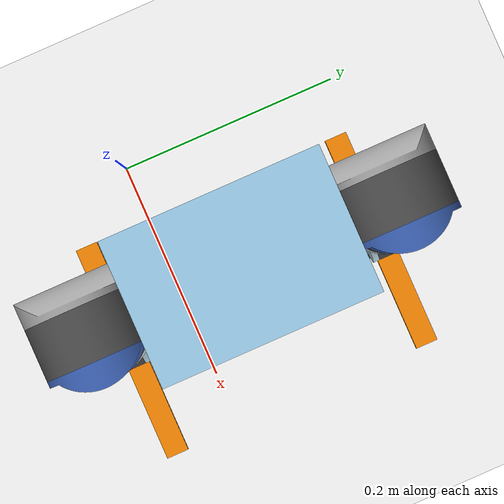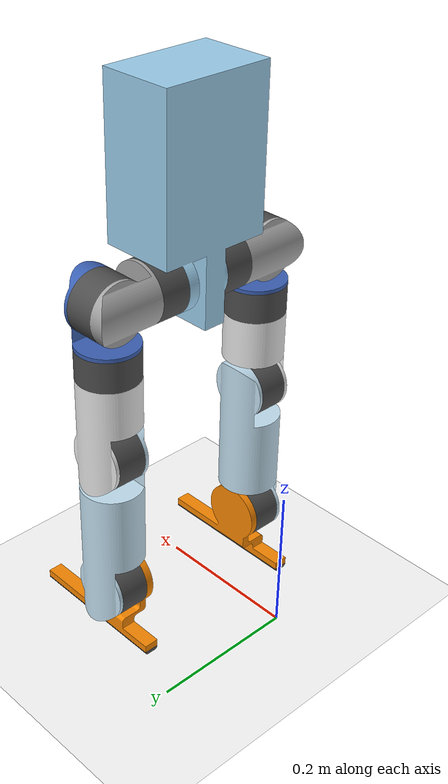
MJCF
<mujoco model="scene">
    <include file="humanoid_mockup.xml"/>

    <visual>
        <headlight diffuse="0.6 0.6 0.6" ambient="0.3 0.3 0.3" specular="0 0 0"/>
        <rgba haze="0.15 0.25 0.35 1"/>
        <global azimuth="160" elevation="-20"/>
    </visual>

    <asset>
        <texture type="skybox" builtin="gradient" rgb1="1 1 1" rgb2="1 1 1" width="800" height="800"/>
        <texture type="2d" name="groundplane" builtin="checker" mark="edge" rgb1="1 1 1" rgb2="1 1 1" markrgb="0 0 0"
            width="300" height="300"/>
        <material name="groundplane" texture="groundplane" texuniform="true" texrepeat="5 5" reflectance="0"/>
    </asset>

    <worldbody>
        <body name="floor">
            <geom name="floor" size="0 0 0.01" type="plane" material="groundplane" contype="1" conaffinity="0"
                priority="1" friction="0.6" condim="3"/>
        </body>
    </worldbody>

    <keyframe>
        <key name="home"
            qpos="
                0 0 0.5
                1 0 0 0

                -0.39095 -0.01061 -0.00438 -0.88998 0.49905
                -0.39095 -0.01061 -0.00438 -0.88998 0.49905
                "
            ctrl="
                -0.39095 -0.01061 -0.00438 -0.88998 0.49905
                -0.39095 -0.01061 -0.00438 -0.88998 0.49905
        "/>
    </keyframe>
</mujoco>

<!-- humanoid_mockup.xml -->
<!-- Generated using onshape-to-robot -->
<!-- Onshape https://cad.onshape.com/documents/a9a7e86a17f28ee4ee62053e/w/e5c2325ac4afc9cec5a29721/e/8ca5f896267b7130065f5bbb -->
<mujoco model="humanoid_mockup_v0.1">
  <option iterations="1" ls_iterations="5">
    <flag eulerdamp="disable"/>
  </option>
  <compiler angle="radian" meshdir="assets"/>
  <default>
    <default class="humanoid_mockup_v0.1">
      <joint frictionloss="0.1" armature="0.005"/>
      <position kp="50" dampratio="1"/>
      <default class="visual">
        <geom type="mesh" contype="0" conaffinity="0" group="2"/>
      </default>
      <default class="collision">
        <geom group="3"/>
      </default>
    </default>
  </default>
  <!-- Additional steadywin_GIM6010-8.xml -->
  <default>
    <default class="steadywin_GIM6010_8">
      <!-- need to be identified -->
      <geom contype="0" conaffinity="0"/>
      <joint damping="0.1" frictionloss="0.5" armature="0.002"/>
      <position kp="50.0" kv="0.0" forcerange="-11.0 11.0"/>
    </default>
  </default>
  <!-- Additional sensors.xml -->
  <sensor>
    <gyro site="imu" name="gyro"/>
    <velocimeter site="imu" name="local_linvel"/>
    <accelerometer site="imu" name="accelerometer"/>
    <framezaxis objtype="site" objname="imu" name="upvector"/>
    <framexaxis objtype="site" objname="imu" name="forwardvector"/>
    <framelinvel objtype="site" objname="imu" name="global_linvel"/>
    <frameangvel objtype="site" objname="imu" name="global_angvel"/>
    <framepos objtype="site" objname="imu" name="position"/>
    <framequat objtype="site" objname="imu" name="orientation"/>
    <framelinvel objtype="site" objname="right_foot" name="right_foot_global_linvel"/>
    <framelinvel objtype="site" objname="left_foot" name="left_foot_global_linvel"/>
    <framexaxis objtype="site" objname="left_foot" name="left_foot_upvector"/>
    <framexaxis objtype="site" objname="right_foot" name="right_foot_upvector"/>
    <framepos objtype="site" objname="left_foot" name="left_foot_pos"/>
    <framepos objtype="site" objname="right_foot" name="right_foot_pos"/>
  </sensor>
  <worldbody>
    <!-- Link trunk_2 -->
    <body name="trunk_2" pos="0 0 0.55" quat="1 0 0 0" childclass="humanoid_mockup_v0.1">
      <freejoint name="trunk_2_freejoint"/>
      <inertial pos="0.120022 0.0611056 0.0576308" mass="5.776" fullinertia="0.0497042 0.0436902 0.0147819 5.50334e-11 -1.13903e-18 -4.30554e-10"/>
      <!-- Part gim6010_8 -->
      <geom type="mesh" class="visual" pos="0.120022 0.0911056 -0.0540277" quat="0.707107 -0.707107 -3.23536e-09 3.23536e-09" mesh="gim6010_8" material="gim6010_8_material"/>
      <!-- Part trunk_2 -->
      <geom type="mesh" class="visual" pos="0.120022 0.0611056 -0.0540277" quat="1 -7.44689e-09 -0 4.57549e-09" mesh="trunk" material="trunk_material"/>
      <!-- Part gim6010_8_2 -->
      <geom type="mesh" class="visual" pos="0.120022 -0.00889443 -0.0540277" quat="0.707107 -0.707107 -3.23536e-09 3.23536e-09" mesh="gim6010_8" material="gim6010_8_material"/>
      <!-- Frame trunk -->
      <site group="3" name="trunk" pos="0.120022 0.0611056 0.0459723" quat="1 -7.44689e-09 -0 4.57549e-09"/>
      <!-- Frame imu -->
      <site group="3" name="imu" pos="0.120022 0.0611056 0.195972" quat="1 -7.44689e-09 -0 4.57549e-09"/>
      <!-- Link left_hip_pitch_to_roll -->
      <body name="left_hip_pitch_to_roll" pos="0.120022 0.131106 -0.0540277" quat="0.707107 -0.707107 5.37049e-09 1.18412e-08">
        <!-- Joint from trunk_2 to left_hip_pitch_to_roll -->
        <joint axis="0 0 1" name="left_hip_pitch" type="hinge" range="-1.5707963511359102 1.570796302453883" class="steadywin_GIM6010_8"/>
        <inertial pos="-0.00539992 -2.00931e-10 0.046622" mass="0.517883" fullinertia="0.000465444 0.000403205 0.000324921 -3.16452e-12 1.58161e-06 1.79213e-12"/>
        <!-- Part left_hip_pitch_to_roll -->
        <geom type="mesh" class="visual" pos="0 6.93889e-18 -0.07" quat="0.707107 0.707107 0 -3.63926e-25" mesh="left_hip_pitch_to_roll" material="left_hip_pitch_to_roll_material"/>
        <!-- Part gim6010_8_3 -->
        <geom type="mesh" class="visual" pos="0.02 0 0.05" quat="0.5 0.5 -0.5 -0.5" mesh="gim6010_8" material="gim6010_8_material"/>
        <!-- Link left_hip_roll_to_yaw -->
        <body name="left_hip_roll_to_yaw" pos="0.02 6.93889e-18 0.05" quat="1.44385e-16 -0.707107 1.11022e-16 -0.707107">
          <!-- Joint from left_hip_pitch_to_roll to left_hip_roll_to_yaw -->
          <joint axis="0 0 1" name="left_hip_roll" type="hinge" range="-0.3490658503988659 1.5707963267948966" class="steadywin_GIM6010_8"/>
          <inertial pos="2.00931e-10 -0.0558222 -0.0146001" mass="0.517883" fullinertia="0.000696527 0.000428388 0.0006553 -7.24941e-12 -3.16452e-12 -0.000148243"/>
          <!-- Part left_hip_roll_to_yaw -->
          <geom type="mesh" class="visual" pos="-0.12 0 -0.02" quat="0.5 -0.5 -0.5 -0.5" mesh="left_hip_roll_to_yaw" material="left_hip_roll_to_yaw_material"/>
          <!-- Part gim6010_8_4 -->
          <geom type="mesh" class="visual" pos="2.77556e-17 -0.09 -0.02" quat="0.5 -0.5 -0.5 -0.5" mesh="gim6010_8" material="gim6010_8_material"/>
          <!-- Link left_hip_yaw_to_knee -->
          <body name="left_hip_yaw_to_knee" pos="2.77556e-17 -0.09 -0.02" quat="0.5 0.5 -0.5 0.5">
            <!-- Joint from left_hip_roll_to_yaw to left_hip_yaw_to_knee -->
            <joint axis="0 0 1" name="left_hip_yaw" type="hinge" range="-1.570796331370385 1.5707963222194081" class="steadywin_GIM6010_8"/>
            <inertial pos="6.01852e-10 -0.00240575 0.0825501" mass="0.688" fullinertia="0.00139735 0.00147146 0.000460223 1.06662e-11 -1.67017e-11 4.0779e-05"/>
            <!-- Part left_hip_yaw_to_knee -->
            <geom type="mesh" class="visual" pos="1.38778e-17 0.12 -0.09" quat="0 1 0 0" mesh="left_hip_yaw_to_knee" material="left_hip_yaw_to_knee_material"/>
            <!-- Part gim6010_8_5 -->
            <geom type="mesh" class="visual" pos="1.38778e-17 0.02 0.11" quat="0.707107 0.707107 -0 -1.48992e-17" mesh="gim6010_8" material="gim6010_8_material"/>
            <!-- Link left_knee_to_ankle_pitch -->
            <body name="left_knee_to_ankle_pitch" pos="1.38778e-17 0.02 0.11" quat="0.707107 -0.707107 -1.92504e-10 -1.92504e-10">
              <!-- Joint from left_hip_yaw_to_knee to left_knee_to_ankle_pitch -->
              <joint axis="0 0 1" name="left_knee" type="hinge" range="-2.268928027048144 5.444842610619447e-10" class="steadywin_GIM6010_8"/>
              <inertial pos="-4.82013e-08 -0.149239 -0.0200003" mass="0.788" fullinertia="0.00357604 0.000553221 0.00362879 1.87021e-09 2.32028e-09 -0.000244816"/>
              <!-- Part left_knee_to_ankle_pitch -->
              <geom type="mesh" class="visual" pos="-1.38778e-17 0.2 0.1" quat="0.707107 -0.707107 -0 7.25026e-25" mesh="left_knee_to_ankle_pitch" material="left_knee_to_ankle_pitch_material"/>
              <!-- Part gim6010_8_6 -->
              <geom type="mesh" class="visual" pos="-2.77556e-17 -0.2 0" quat="0 1 0 0" mesh="gim6010_8" material="gim6010_8_material"/>
              <!-- Link left_foot_2 -->
              <body name="left_foot_2" pos="-2.77556e-17 -0.2 2.77556e-17" quat="1 0 -1.11022e-16 3.46945e-17">
                <!-- Joint from left_knee_to_ankle_pitch to left_foot_2 -->
                <joint axis="0 0 1" name="left_ankle_pitch" type="hinge" range="-1.5707963267948966 1.5707963267948966" class="steadywin_GIM6010_8"/>
                <inertial pos="0.0202559 -0.0527376 -0.0136201" mass="0.4" fullinertia="0.000426448 0.00107974 0.00139386 0.000143357 5.16919e-05 -0.000119141"/>
                <!-- Part left_foot_sole -->
                <geom type="mesh" class="visual" pos="0 0.4 0.1" quat="0.707107 -0.707107 -0 3.77957e-24" mesh="left_foot_sole" material="left_foot_sole_material"/>
                <geom type="mesh" class="collision" pos="0 0.4 0.1" quat="0.707107 -0.707107 -0 3.77957e-24" mesh="left_foot_sole" material="left_foot_sole_material" name="left_foot_contact"/>
                <!-- Part left_foot_2 -->
                <geom type="mesh" class="visual" pos="-1.38778e-17 0.4 0.1" quat="0.707107 -0.707107 -0 -5.6708e-26" mesh="left_foot" material="left_foot_material"/>
                <!-- Frame left_foot -->
                <site group="3" name="left_foot" pos="0.03 -0.075 -0.02" quat="0.707107 -0.707107 -0 3.77957e-24"/>
              </body>
            </body>
          </body>
        </body>
      </body>
      <!-- Link right_hip_pitch_to_roll -->
      <body name="right_hip_pitch_to_roll" pos="0.120022 -0.00889443 -0.0540277" quat="0.707107 -0.707107 -3.23536e-09 3.23536e-09">
        <!-- Joint from trunk_2 to right_hip_pitch_to_roll -->
        <joint axis="0 0 1" name="right_hip_pitch" type="hinge" range="-1.5707963267948966 1.5707963267948966" class="steadywin_GIM6010_8"/>
        <inertial pos="-0.00539992 2.00931e-10 -0.046622" mass="0.517883" fullinertia="0.000465444 0.000403205 0.000324921 3.16452e-12 -1.58161e-06 1.79213e-12"/>
        <!-- Part gim6010_8_7 -->
        <geom type="mesh" class="visual" pos="-0.02 0 -0.05" quat="0.707107 -0 0.707107 -3.33067e-16" mesh="gim6010_8" material="gim6010_8_material"/>
        <!-- Part right_hip_pitch_to_roll -->
        <geom type="mesh" class="visual" pos="-2.77556e-17 0 0.07" quat="0.707107 0.707107 -0 -2.88869e-25" mesh="right_hip_pitch_to_roll" material="right_hip_pitch_to_roll_material"/>
        <!-- Link right_hip_roll_to_yaw -->
        <body name="right_hip_roll_to_yaw" pos="0.02 -6.93889e-18 -0.05" quat="0.707107 5.26575e-09 -0.707107 -5.26575e-09">
          <!-- Joint from right_hip_pitch_to_roll to right_hip_roll_to_yaw -->
          <joint axis="0 0 1" name="right_hip_roll" type="hinge" range="-0.3490658355050899 1.5707963416886725" class="steadywin_GIM6010_8"/>
          <inertial pos="2.00931e-10 0.0558222 0.0146001" mass="0.517883" fullinertia="0.000696527 0.000428388 0.0006553 7.24941e-12 3.16452e-12 -0.000148243"/>
          <!-- Part right_hip_roll_to_yaw -->
          <geom type="mesh" class="visual" pos="0.12 0 0.02" quat="0.5 0.5 0.5 -0.5" mesh="right_hip_roll_to_yaw" material="right_hip_roll_to_yaw_material"/>
          <!-- Part gim6010_8_8 -->
          <geom type="mesh" class="visual" pos="-2.08167e-17 0.05 0.02" quat="0.5 -0.5 0.5 0.5" mesh="gim6010_8" material="gim6010_8_material"/>
          <!-- Link right_hip_yaw_to_knee -->
          <body name="right_hip_yaw_to_knee" pos="-2.08167e-17 0.09 0.02" quat="0.5 0.5 0.5 -0.5">
            <!-- Joint from right_hip_roll_to_yaw to right_hip_yaw_to_knee -->
            <joint axis="0 0 1" name="right_hip_yaw" type="hinge" range="-1.5707963222194081 1.570796331370385" class="steadywin_GIM6010_8"/>
            <inertial pos="-6.01852e-10 -0.00240575 -0.0825501" mass="0.688" fullinertia="0.00139735 0.00147146 0.000460223 -1.06662e-11 -1.67017e-11 -4.0779e-05"/>
            <!-- Part right_hip_yaw_to_knee -->
            <geom type="mesh" class="visual" pos="0 0.12 0.09" quat="1 -0 -8.67362e-19 1.91719e-16" mesh="right_hip_yaw_to_knee" material="right_hip_yaw_to_knee_material"/>
            <!-- Part gim6010_8_9 -->
            <geom type="mesh" class="visual" pos="1.38778e-17 -0.02 -0.11" quat="0.707107 -0.707107 -0 -9.59898e-25" mesh="gim6010_8" material="gim6010_8_material"/>
            <!-- Link right_knee_to_ankle_pitch -->
            <body name="right_knee_to_ankle_pitch" pos="2.77556e-17 0.02 -0.11" quat="0.707107 0.707107 0 4.31673e-17">
              <!-- Joint from right_hip_yaw_to_knee to right_knee_to_ankle_pitch -->
              <joint axis="0 0 1" name="right_knee" type="hinge" range="-2.2689280275926285 0.0" class="steadywin_GIM6010_8"/>
              <inertial pos="4.82013e-08 -0.149239 0.0200003" mass="0.788" fullinertia="0.00357604 0.000553221 0.00362879 -1.87021e-09 2.32028e-09 0.000244816"/>
              <!-- Part right_knee_to_ankle_pitch -->
              <geom type="mesh" class="visual" pos="-1.38778e-17 0.2 -0.1" quat="0.707107 -0.707107 -0 4.48325e-26" mesh="right_knee_to_ankle_pitch" material="right_knee_to_ankle_pitch_material"/>
              <!-- Part gim6010_8_10 -->
              <geom type="mesh" class="visual" pos="0 -0.2 0.04" quat="0 1 0 0" mesh="gim6010_8" material="gim6010_8_material"/>
              <!-- Link right_foot_2 -->
              <body name="right_foot_2" pos="0 -0.2 4.85723e-17" quat="1 1.55583e-17 1.15648e-18 -2.69444e-25">
                <!-- Joint from right_knee_to_ankle_pitch to right_foot_2 -->
                <joint axis="0 0 1" name="right_ankle_pitch" type="hinge" range="-1.5707963267948966 1.5707963267948966" class="steadywin_GIM6010_8"/>
                <inertial pos="0.0202559 -0.0527376 0.0136201" mass="0.4" fullinertia="0.000426448 0.00107974 0.00139386 0.000143357 -5.16919e-05 0.000119141"/>
                <!-- Part right_foot_2 -->
                <geom type="mesh" class="visual" pos="-1.38778e-17 0.4 -0.1" quat="0.707107 -0.707107 0 -6.3182e-26" mesh="right_foot" material="right_foot_material"/>
                <!-- Part right_foot_sole -->
                <geom type="mesh" class="visual" pos="4.16334e-17 0.4 -0.1" quat="0.707107 -0.707107 -0 -6.31821e-26" mesh="right_foot_sole" material="right_foot_sole_material"/>
                <geom type="mesh" class="collision" pos="4.16334e-17 0.4 -0.1" quat="0.707107 -0.707107 -0 -6.31821e-26" mesh="right_foot_sole" material="right_foot_sole_material" name="right_foot_contact"/>
                <!-- Frame right_foot -->
                <site group="3" name="right_foot" pos="0.03 -0.075 0.02" quat="0.707107 -0.707107 -0 -6.31821e-26"/>
              </body>
            </body>
          </body>
        </body>
      </body>
    </body>
  </worldbody>
  <asset>
    <mesh file="trunk.stl"/>
    <mesh file="left_foot_sole.stl"/>
    <mesh file="right_hip_pitch_to_roll.stl"/>
    <mesh file="left_hip_yaw_to_knee.stl"/>
    <mesh file="left_knee_to_ankle_pitch.stl"/>
    <mesh file="right_foot.stl"/>
    <mesh file="right_hip_roll_to_yaw.stl"/>
    <mesh file="right_hip_yaw_to_knee.stl"/>
    <mesh file="right_foot_sole.stl"/>
    <mesh file="left_hip_roll_to_yaw.stl"/>
    <mesh file="left_hip_pitch_to_roll.stl"/>
    <mesh file="gim6010_8.stl"/>
    <mesh file="right_knee_to_ankle_pitch.stl"/>
    <mesh file="left_foot.stl"/>
    <material name="gim6010_8_material" rgba="0.301961 0.301961 0.301961 1"/>
    <material name="trunk_material" rgba="0.615686 0.811765 0.929412 1"/>
    <material name="left_hip_pitch_to_roll_material" rgba="0.647059 0.647059 0.647059 1"/>
    <material name="left_hip_roll_to_yaw_material" rgba="0.231373 0.380392 0.705882 1"/>
    <material name="left_hip_yaw_to_knee_material" rgba="0.917647 0.917647 0.917647 1"/>
    <material name="left_knee_to_ankle_pitch_material" rgba="0.768627 0.886275 0.952941 1"/>
    <material name="left_foot_sole_material" rgba="0.301961 0.301961 0.301961 1"/>
    <material name="left_foot_material" rgba="0.972549 0.529412 0.00392157 1"/>
    <material name="right_hip_pitch_to_roll_material" rgba="0.647059 0.647059 0.647059 1"/>
    <material name="right_hip_roll_to_yaw_material" rgba="0.231373 0.380392 0.705882 1"/>
    <material name="right_hip_yaw_to_knee_material" rgba="0.917647 0.917647 0.917647 1"/>
    <material name="right_knee_to_ankle_pitch_material" rgba="0.768627 0.886275 0.952941 1"/>
    <material name="right_foot_material" rgba="0.972549 0.529412 0.00392157 1"/>
    <material name="right_foot_sole_material" rgba="0.301961 0.301961 0.301961 1"/>
  </asset>
  <actuator>
    <position class="steadywin_GIM6010_8" name="left_hip_pitch" joint="left_hip_pitch" inheritrange="1"/>
    <position class="steadywin_GIM6010_8" name="left_hip_roll" joint="left_hip_roll" inheritrange="1"/>
    <position class="steadywin_GIM6010_8" name="left_hip_yaw" joint="left_hip_yaw" inheritrange="1"/>
    <position class="steadywin_GIM6010_8" name="left_knee" joint="left_knee" inheritrange="1"/>
    <position class="steadywin_GIM6010_8" name="left_ankle_pitch" joint="left_ankle_pitch" inheritrange="1"/>
    <position class="steadywin_GIM6010_8" name="right_hip_pitch" joint="right_hip_pitch" inheritrange="1"/>
    <position class="steadywin_GIM6010_8" name="right_hip_roll" joint="right_hip_roll" inheritrange="1"/>
    <position class="steadywin_GIM6010_8" name="right_hip_yaw" joint="right_hip_yaw" inheritrange="1"/>
    <position class="steadywin_GIM6010_8" name="right_knee" joint="right_knee" inheritrange="1"/>
    <position class="steadywin_GIM6010_8" name="right_ankle_pitch" joint="right_ankle_pitch" inheritrange="1"/>
  </actuator>
  <equality/>
</mujoco>
